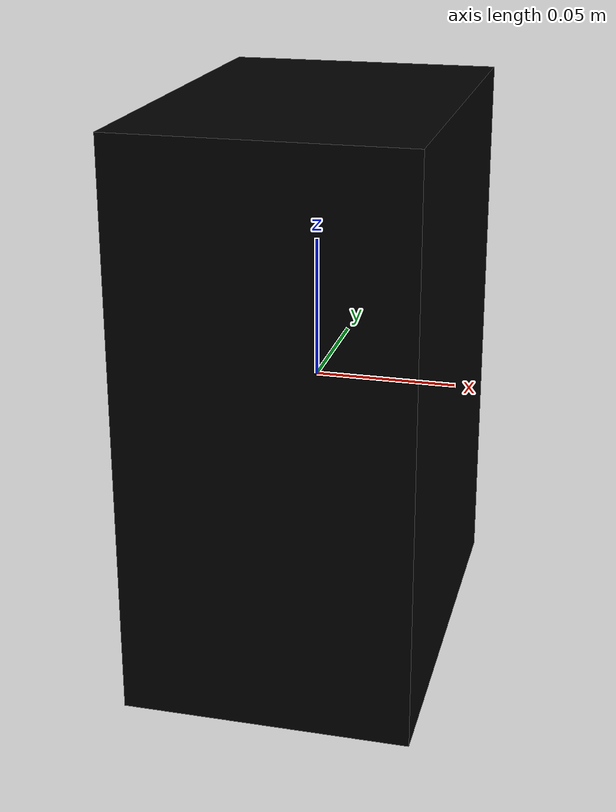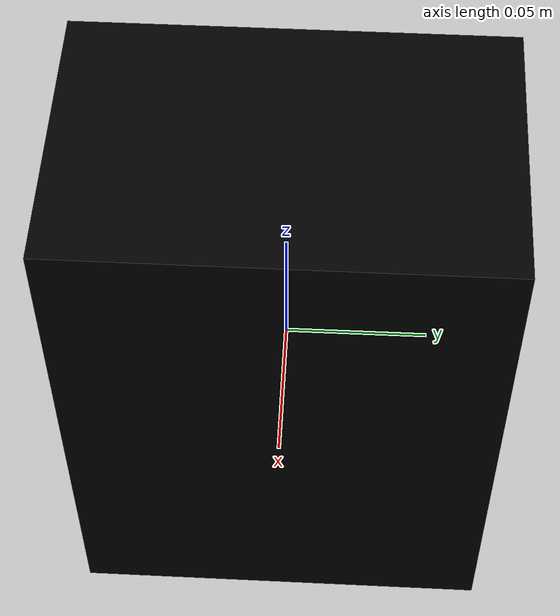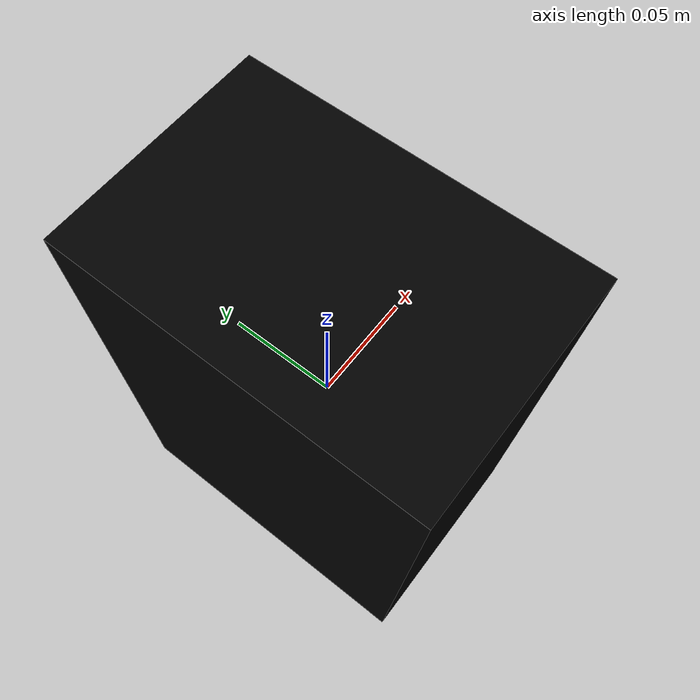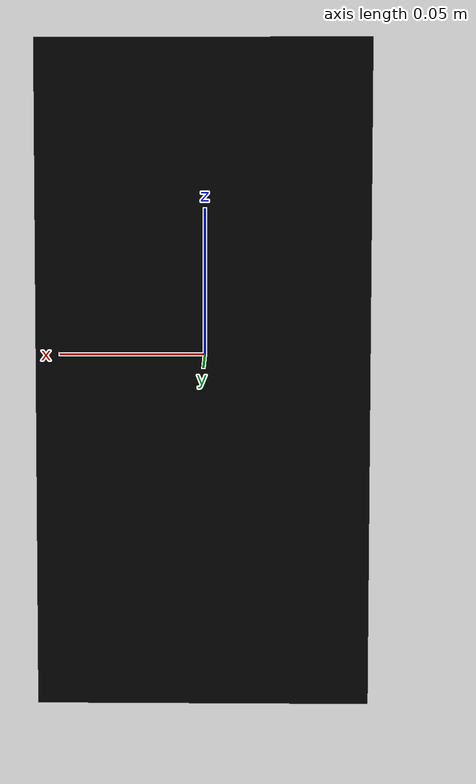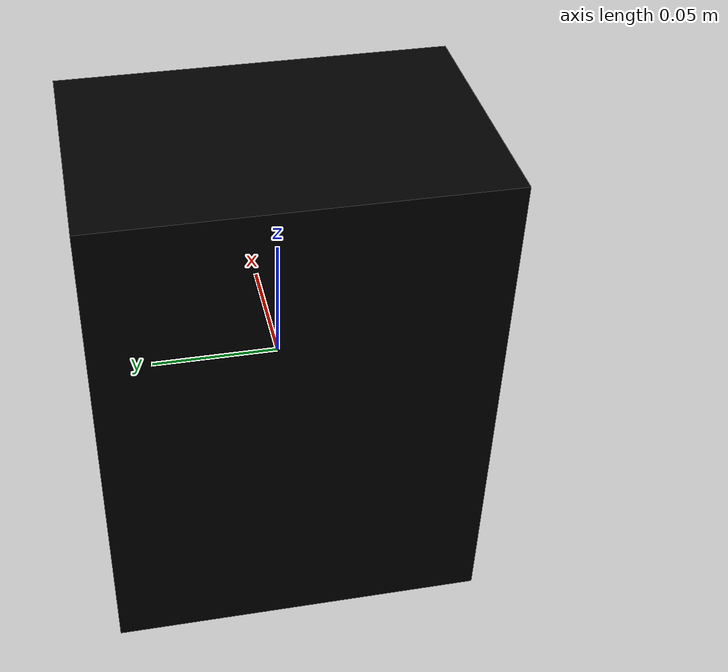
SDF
<?xml version="1.0" ?>
<sdf version="1.5">
  <model name="cube">
    <static>true</static>
    <pose>0 0 0 0 0 0</pose>
    <link name="link">
      <visual name="visual">
        <geometry>
          <box>
            <size>0.10 0.15 0.2</size> <!-- Adjust the size of the cube here -->
          </box>
        </geometry>
        <material>
          <ambient>0 0 1 1</ambient>
          <diffuse>0 0 0 1</diffuse>
          <specular>0.1 0.1 0.1 1</specular>
          <emissive>0 0 0 0</emissive>
        </material>
      </visual>
      <collision name="collision">
        <geometry>
          <box>
            <size>0.2 0.2 0.2</size> <!-- Adjust the size of the cube here -->
          </box>
        </geometry>
        <surface>
          <contact>
            <ode/>
          </contact>
          <bounce/>
          <friction>
            <ode/>
          </friction>
        </surface>
      </collision>
    </link>

  </model>
</sdf>
